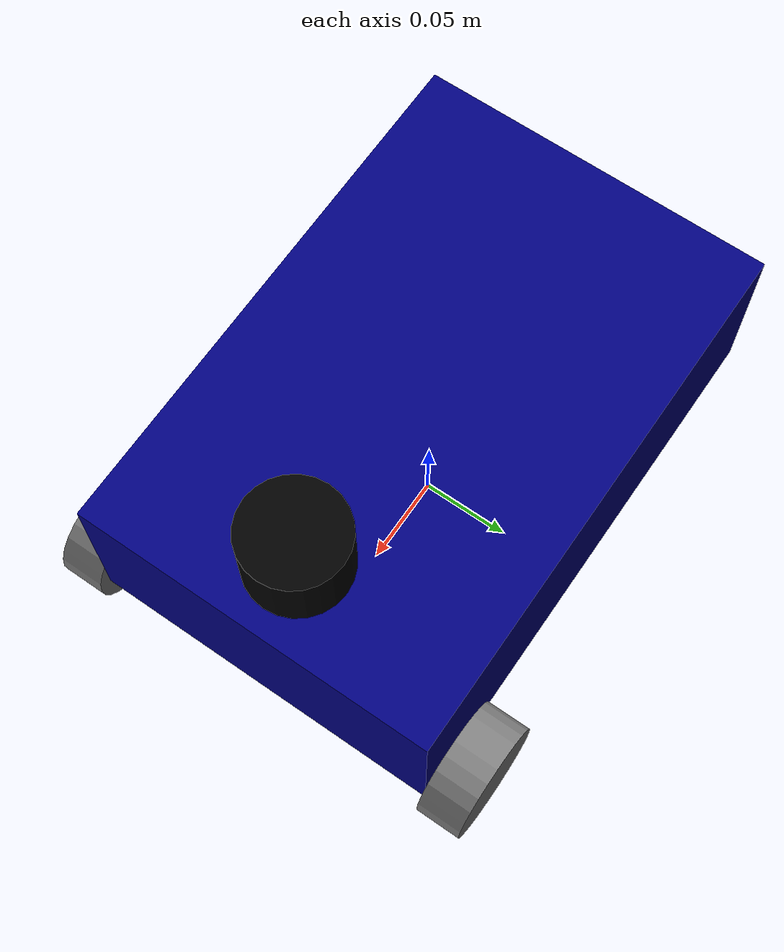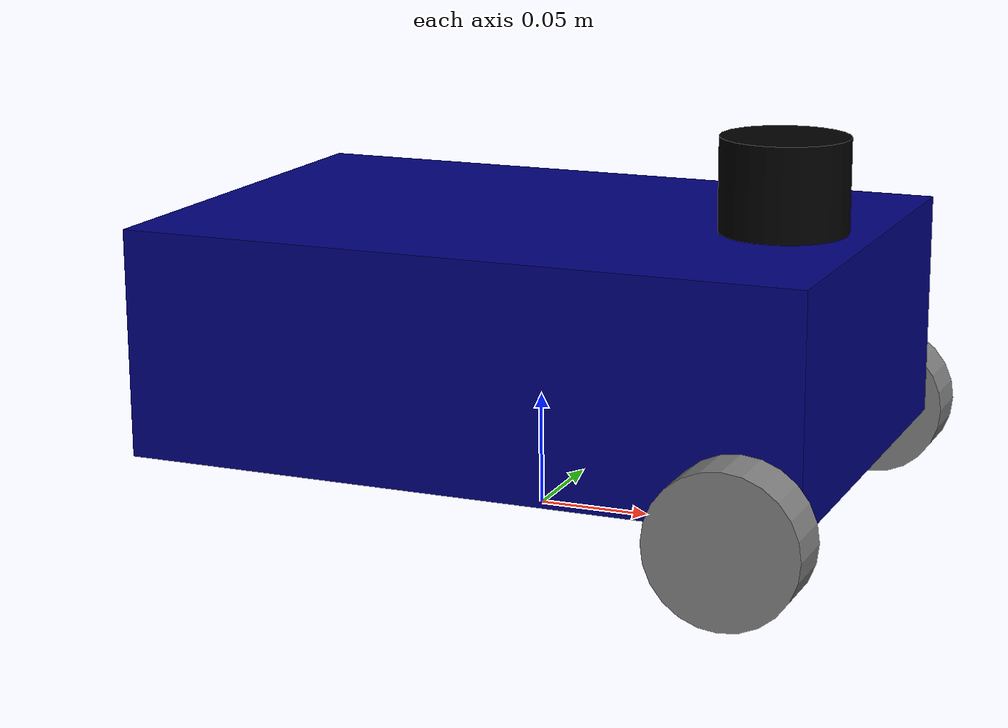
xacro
<?xml version="1.0"?>

<robot name="my_main_robot" xmlns:xacro="hettps://www.ros.org/wiki/xacro">

    <xacro:arg name="use_ros2_control" default="true"/>

    <xacro:arg name="use_sim_time" default="true"/>

    <!-- Importar Cores (propriedades comuns) -->
    <xacro:include filename="$(find my_robot_description)/urdf/cm_properties.xacro" />

    <!-- Importar links e juntas -->
    <xacro:include filename="$(find my_robot_description)/urdf/robot_base.xacro" />
    <xacro:include filename="$(find my_robot_description)/urdf/lidar.xacro"/>
    <!--xacro:include filename="$(find my_robot_description)/urdf/camera.xacro"/-->

    <!-- Importar o gazebo -->
    <xacro:if value="$(arg use_ros2_control)">
        <xacro:include filename="$(find my_robot_description)/urdf/robot_ros2_control.xacro" />
    </xacro:if>

    <xacro:unless value="$(arg use_ros2_control)">
        <xacro:include filename="$(find my_robot_description)/urdf/robot_gazebo.xacro" />
    </xacro:unless>

</robot>

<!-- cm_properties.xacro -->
<robot xmlns:xacro="http://www.ros.org/wiki/xacro" >

    <!-- Cores -->
    <material name="green">
        <color rgba="0.0 0.5 0.0 1"/>
    </material>
    <material name="blue">
        <color rgba="0.0 0.0 0.5 1"/>
    </material>
    <material name="red">
        <color rgba="0.5 0.0 0.0 1"/>
    </material>
    <material name="grey">
        <color rgba="0.5 0.5 0.5 1"/>
    </material>
    <material name="black">
        <color rgba="0 0 0 1"/>
    </material>

    <xacro:macro name="box_inertia" params="m l w h o_xyz o_rpy" >
        <inertial>
            <origin xyz="${o_xyz}" rpy="${o_rpy}" />
            <mass value="${m}" />
            <inertia ixx="${(m/12) * (h*h + l*l)}" ixy="0" ixz="0"
                     iyy="${(m/12) * (w*w + l*l)}" iyz="0"
                     izz="${(m/12) * (h*h + w*w)}" />
        </inertial>
    </xacro:macro>

    <xacro:macro name="cylinder_inertia" params="m r l o_xyz o_rpy">
        <inertial>
            <mass value="${m}" />
            <origin xyz="${o_xyz}" rpy="${o_rpy}" />
            <inertia ixx="${(m/12) * (3*r*r + l*l)}" ixy="0" ixz="0"
                     iyy="${(m/12) * (3*r*r + l*l)}" iyz="0"
                     izz="${(m/2) * (r*r)}" />
        </inertial>
    </xacro:macro>

    <xacro:macro name="sphere_inertia" params="m r o_xyz o_rpy">
        <mass value="${m}" />
        <origin xyz="${o_xyz}" rpy="${o_rpy}" />
        <inertia ixx="${(2/5) * m*r*r}" ixy="0" ixz="0"
                     iyy="${(2/5) * m*r*r}" iyz="0"
                     izz="${(2/5) * m*r*r}" />
    </xacro:macro>

    <gazebo reference="base_link">
        <material>Gazebo/Blue</material>
   </gazebo>

   <gazebo reference="right_wheel_link">
        <material>Gazebo/Grey</material>
   </gazebo>

   <gazebo reference="left_wheel_link">
        <material>Gazebo/Grey</material>
   </gazebo>

   <gazebo reference="caster_wheel_link">
        <material>Gazebo/Grey</material>
   </gazebo>

</robot>

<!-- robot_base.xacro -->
<robot xmlns:xacro="http://www.ros.org/wiki/xacro" >
    <!--  Variáveis  -->
    <xacro:property name="base_length" value="0.3" />
    <xacro:property name="base_width" value="0.2" />
    <xacro:property name="base_height" value="0.1" />
    <xacro:property name="wheel_radius" value="0.0325" />
    <xacro:property name="wheel_length" value="0.025" />

    <link name="base_footprint"/>

    <link name="base_link">
        <visual>
            <geometry>
                <box size="${base_length} ${base_width} ${base_height}"/>
            </geometry>
            <origin xyz="0 0 ${base_height / 2.0}" rpy="0 0 0"/>
            <material name="blue"/>
        </visual>
        <collision>
            <geometry>
                <box size="${base_length} ${base_width} ${base_height}"/>
            </geometry>
            <origin xyz="0 0 ${base_height / 2.0}" rpy="0 0 0"/>
        </collision>
        <xacro:box_inertia m="5.0" l="${2*base_length}" w="${2*base_width}" h="${2*base_height}"
                           o_xyz="0 0 ${base_height / 2.0}" o_rpy="0 0 0" />

    </link>

    <joint name="base_joint" type="fixed">
        <parent link="base_footprint"/>
        <child link="base_link"/>
        <origin xyz="0 0 ${wheel_radius}"/>
    </joint>

    <xacro:macro name="wheel_link" params="prefix">
        <link name="${prefix}_wheel_link">
            <visual>
                <geometry>
                    <cylinder radius="${wheel_radius}" length="${wheel_length}"/>
                </geometry>
                <origin xyz="0.0 0.0 0.0" rpy="${pi / 2.0} 0.0 0.0"/>
                <material name="grey"/>
            </visual>
            <collision>
                <geometry>
                    <sphere radius="${wheel_radius}" />
                </geometry>
                <origin xyz="0.0 0.0 0.0" rpy="${pi / 2.0} 0.0 0.0"/>
            </collision>
            <xacro:cylinder_inertia m="1.0" r="${2*wheel_radius}" l="${2*wheel_length}" o_xyz="0.0 0.0 0.0" o_rpy="${pi / 2.0} 0.0 0.0" />
        </link>
    </xacro:macro>

    <xacro:wheel_link prefix="left" />

    <joint name="left_wheel_joint" type="continuous">
        <parent link="base_link"/>
        <child link="left_wheel_link"/>
        <origin xyz="${(base_length / 4.0)+0.05} ${(base_width + wheel_length) / 2.0} 0.0" rpy="0 0 0"/>
        <axis xyz="0 1 0"/>
    </joint>

    <xacro:wheel_link prefix="right" />

    <joint name="right_wheel_joint" type="continuous">
        <parent link="base_link"/>
        <child link="right_wheel_link"/>
        <origin xyz="${(base_length / 4.0)+0.05} ${- (base_width + wheel_length) / 2.0} 0" rpy="0 0 0"/>
        <axis xyz="0 1 0"/>
    </joint>

    <link name="caster_wheel_link">
        <visual>
            <geometry>
                <sphere radius="${wheel_radius / 2.0}"/>
            </geometry>
            <origin xyz="0.0 0.0 0.0" rpy="0.0 0.0 0.0"/>
            <material name="grey"/>
        </visual>
        <collision>
            <geometry>
                <sphere radius="${wheel_radius / 2.0}"/>
            </geometry>
            <origin xyz="0.0 0.0 0.0" rpy="0.0 0.0 0.0"/>
        </collision>
        <xacro:sphere_inertia m="0.5" r="${2*wheel_radius / 2.0}" o_xyz="0.0 0.0 0.0" o_rpy="0.0 0.0 0.0" />
    </link>

    <joint name="base_caster_wheel_joint" type="fixed">
        <parent link="base_link"/>
        <child link="caster_wheel_link"/>
        <origin xyz="${-base_length / 3.0} 0.0 ${- wheel_radius / 2.0}" rpy="0.0 0.0 0.0"/>
    </joint>
</robot>

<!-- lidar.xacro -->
<robot xmlns:xacro="http://www.ros.org/wiki/xacro">

    <link name="scan_link">
        <visual>
            <origin xyz="0 0 0.01" rpy="0 0 0"/>
            <geometry>
                <cylinder radius="0.0278" length="0.0413"/>
            </geometry>
            <material name="black" />
        </visual>
        <collision>
            <geometry>
                <cylinder radius="0.0278" length="0.0413"/>
            </geometry>
        </collision>
        <xacro:cylinder_inertia m="0.1" r="0.0278" l="0.0413" o_xyz="0 0 0.02" o_rpy="0 0 0" />
    </link>

    <joint name="base_scan_joint" type="fixed">
        <parent link="base_link"/>
        <child link="scan_link"/>
        <origin xyz="0.11 0 0.11" rpy="0 0 0"/>
    </joint>

    <gazebo reference="scan_link">
        <material>Gazebo/Black</material>

        <sensor name="scan" type="ray">
            <pose> 0 0 0 0 0 0 </pose>
            <visualize>false</visualize>
            <update_rate>10</update_rate>
            <ray>
                <scan>
                    <horizontal>
                        <samples>360</samples>
                        <min_angle>-3.14</min_angle>
                        <max_angle>3.14</max_angle>
                    </horizontal>
                </scan>
                <range>
                    <min>0.3</min>
                    <max>12</max>
                </range>
            </ray>
            <plugin name="laser_controller" filename="libgazebo_ros_ray_sensor.so">
                <ros>
                    <remapping>~/out:=scan</remapping>
                </ros>
                <output_type>sensor_msgs/LaserScan</output_type>
                <frame_name>scan_link</frame_name>
            </plugin>
        </sensor>
    </gazebo>

</robot>
